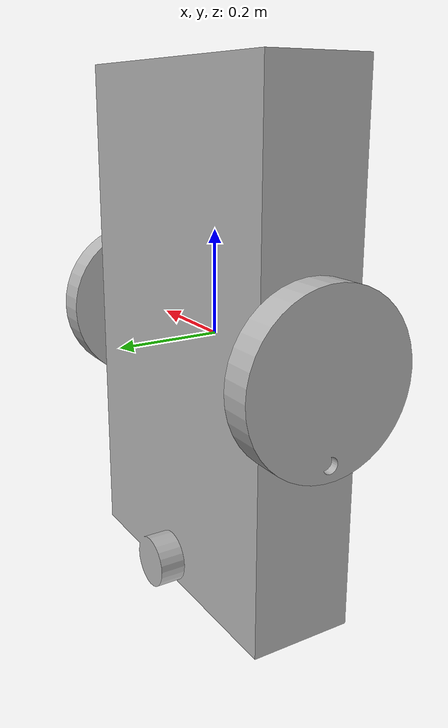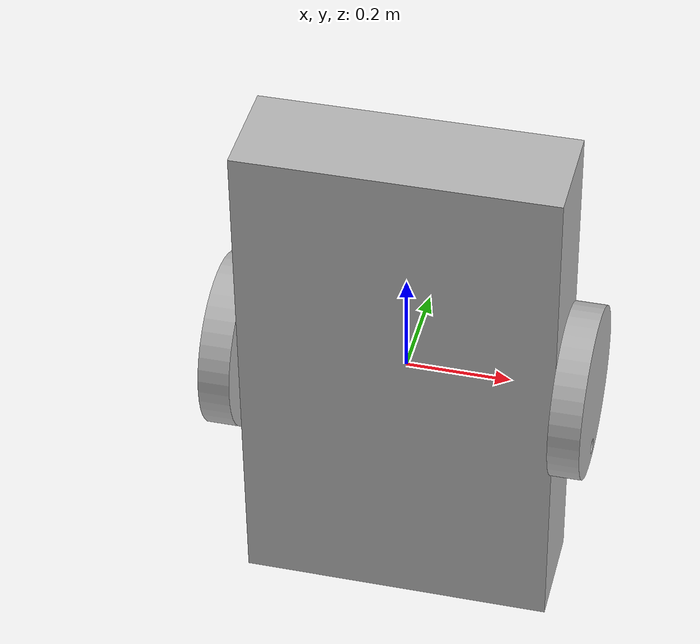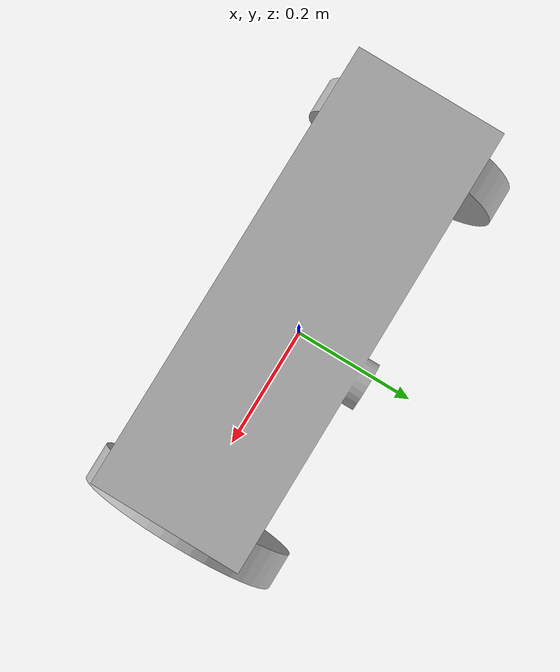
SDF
<?xml version="1.0" ?>
<sdf version="1.5">
  <model name="robot">
    <static>false</static>
<self_collide>true</self_collide>

    <link name="body">
<pose>0 0 0 0 0 0</pose>
      <collision name="collision">
        <geometry>
        <mesh>
<uri>model://robot/mesh/test.stl</uri>
<scale>0.1 0.1 0.1</scale>
	</mesh>
        </geometry>
      </collision>
      <visual name="pokazhi">
        <geometry>
        <mesh>
<uri>model://robot/mesh/test.stl</uri>
<scale>0.1 0.1 0.1</scale>
	</mesh>
        </geometry>
      </visual>
    </link>

    <link name="wheel_r">
<pose>0.3 0 0 0 3.14 -1.57</pose>
      <collision name="collision">
        <geometry>
        <mesh>
<uri>model://robot/mesh/wheel.stl</uri>
<scale>0.03 0.03 0.03</scale>
	</mesh>
        </geometry>
      </collision>
      <visual name="pokazhi">
        <geometry>
        <mesh>
<uri>model://robot/mesh/wheel.stl</uri>
<scale>0.03 0.03 0.03</scale>
	</mesh>
        </geometry>
      </visual>
    </link>

    <link name="wheel_l">
<pose>-0.3 0 0 0 3.14 1.57</pose>
      <collision name="collision">
        <geometry>
        <mesh>
<uri>model://robot/mesh/wheel.stl</uri>
<scale>0.03 0.03 0.03</scale>
	</mesh>
        </geometry>
      </collision>
      <visual name="pokazhi">
        <geometry>
        <mesh>
<uri>model://robot/mesh/wheel.stl</uri>
<scale>0.03 0.03 0.03</scale>
	</mesh>
        </geometry>
      </visual>
    </link>

<joint name="body_wheel_r" type="revolute">
  <parent>body</parent>
    <child>wheel_r</child>
  <pose>0 0 0 0 0 0</pose>
<axis>
        <xyz>0 -1 0</xyz>
      </axis>
 </joint>

<joint name="body_wheel_l" type="revolute">
  <parent>body</parent>
    <child>wheel_l</child>
  <pose>0 0 0 0 0 0</pose>
<axis>
        <xyz>0 1 0</xyz>
      </axis>
 </joint>

  </model>
</sdf>
